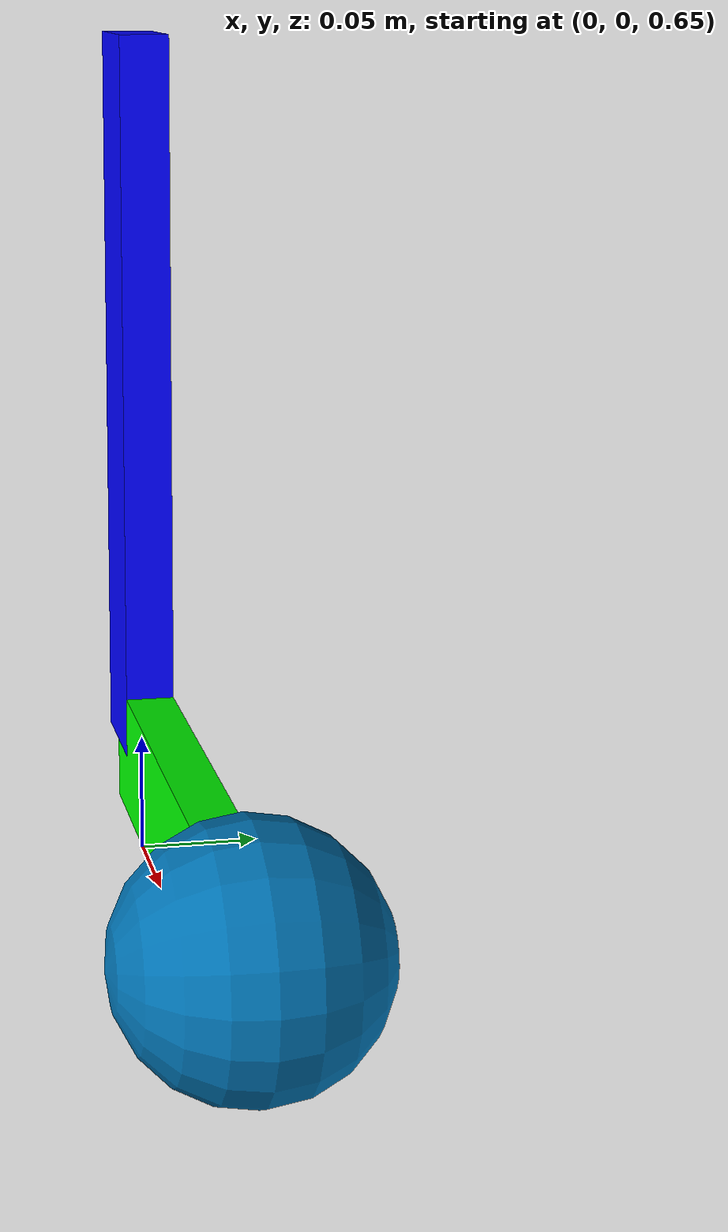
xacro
<?xml version="1.0"?>
<robot xmlns:xacro="http://www.ros.org/wiki/xacro" name="robot">
    <xacro:arg name="use_sim_time" default="false" />
    <xacro:arg name="torque_control" default="false" />
    <xacro:arg name="position_control" default="false" />
    <xacro:property name="L1_length" default="0.3"/>
    <xacro:property name="L2_length" default="0.25"/>
    <xacro:property name="max_torque" default="20.1"/>
    <link name="world">
    </link>

    <joint name="slider_joint" type="prismatic">
        <parent link="world" />
        <child link="base_link" />
        <origin xyz="0 0 1.0" rpy="0 0 0" />
        <axis xyz="0 0 1" />
        <limit effort="0" lower="-10" upper="10" velocity="100.0" />
        <dynamics damping="0.0" friction="0.0" />
    </joint>

    <link name="base_link">
        <inertial>
            <origin xyz="0 0 0" rpy="0 0 0" />
            <mass value="0.01" />
            <inertia ixx="0.01" ixy="0" ixz="0" iyy="0.01" iyz="0" izz="0.01" />
        </inertial>
    </link>

    <joint name="hip_joint" type="revolute">
        <parent link="base_link" />
        <child link="hip_link" />
        <origin xyz="0 0 0" rpy="${pi/2} ${pi/2} 0" />
        <axis xyz="0 0 1" />
        <limit effort="${max_torque}" lower="-${pi/2}" upper="0" velocity="31.67" />
        <dynamics damping="0.01" friction="0.01" />
    </joint>

    <link name="hip_link">
        <visual>
            <origin xyz="${L1_length/2} 0 0" rpy="0 0 0" />
            <geometry>
                <!-- for preview -->
                <box size="${L1_length} 0.05 0.02" />
            </geometry>
            <material name="blue">
                <color rgba="0 0 1 1" />
            </material>
        </visual>
        <collision>
            <origin xyz="${L1_length/2} 0 0" rpy="0 0 0" />
            <geometry>
                <box size="${L1_length} 0.05 0.02" />
            </geometry>
        </collision>
        <inertial>
            <origin xyz="0 0 0" rpy="0 0 0" />
            <mass value="0.6" />
            <inertia ixx="0.01" ixy="0" ixz="0" iyy="0.01" iyz="0" izz="0.01" />
        </inertial>
    </link>

    <joint name="knee_joint" type="revolute">
        <parent link="hip_link" />
        <child link="knee_link" />
        <origin xyz="${L1_length} 0 0" rpy="0 0 0" />
        <axis xyz="0 0 1" />
        <limit effort="${max_torque}" lower="0.1" upper="${pi - 0.1}" velocity="31.67" />
        <dynamics damping="0.01" friction="0.01" />
    </joint>

    <link name="knee_link">
        <visual>
            <origin xyz="${L2_length/2} 0 0" rpy="0 0 0" />
            <geometry>
                <!-- for preview -->
                <box size="${L2_length} 0.05 0.02" />
            </geometry>
            <material name="green">
                <color rgba="0 1 0 1" />
            </material>
        </visual>
        <collision>
            <origin xyz="${L2_length/2} 0 0" rpy="0 0 0" />
            <geometry>
                <box size="${L2_length} 0.01 0.04" />
            </geometry>
        </collision>
        <inertial>
            <origin xyz="0 0 0" rpy="0 0 0" />
            <mass value="0.1" />
            <inertia ixx="0.01" ixy="0" ixz="0" iyy="0.01" iyz="0" izz="0.01" />
        </inertial>
    </link>

    <!-- This has to be a revolute joint for some dumb reason -->
    <!-- Can also change this manually in the sdf to a fixed joint -->
    <joint name="contact_joint" type="fixed">
        <parent link="knee_link" />
        <child link="foot_link" />
        <origin xyz="${L2_length} 0 0" rpy="0 0 0" />
        <axis xyz="0 0 1" />
        <limit effort="1e-5" lower="0" upper="0" velocity="1e-5" />
        <dynamics damping="0.0" friction="0.0" />
    </joint>

    <link name="foot_link">
        <visual>
            <geometry>
                <sphere radius="0.05" />
            </geometry>
        </visual>
        <!-- Something is wrong with the urdf/xacro/sdf conversion.
         This collision name changes when the sim is launched. -->
        <collision>
            <geometry>
                <sphere radius="0.05" />
            </geometry>
        </collision>
        <inertial>
            <mass value="0.01" />
            <inertia ixx="0.01" ixy="0" ixz="0" iyy="0.01" iyz="0" izz="0.01" />
        </inertial>
    </link>

    <xacro:if value="$(arg use_sim_time)">
        <xacro:include filename="$(find robot_desc)/description/simulation.xacro" />
        <xacro:if value="$(arg torque_control)">
            <xacro:include filename="$(find robot_desc)/description/torque_control.xacro" />
        </xacro:if>
        <xacro:include filename="$(find robot_desc)/description/ros2_control.xacro" />
    </xacro:if>
</robot>
